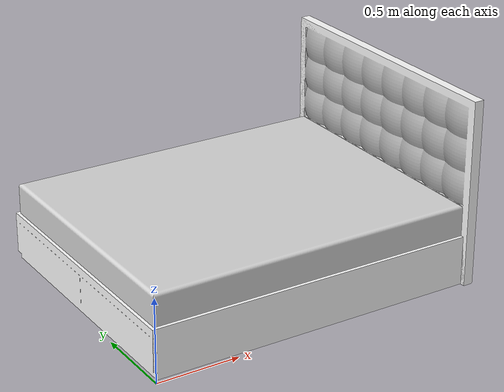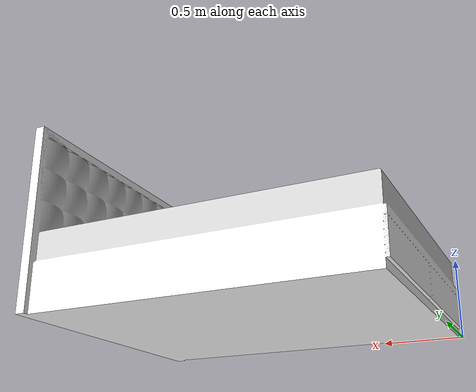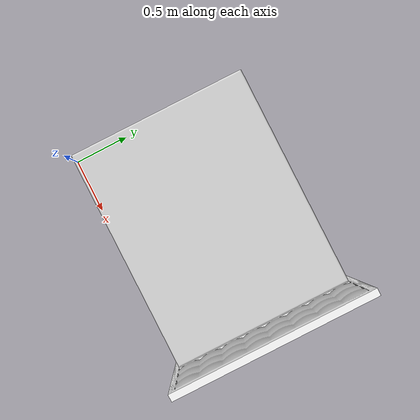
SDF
<?xml version='1.0'?>
<sdf version='1.6'>
  <model name='bed'>
    <link name='body'>
      <pose frame=''>0 0 0 0 -0 0</pose>
      <inertial>
        <mass>1</mass>
        <pose frame=''>0 0 0 0 -0 0</pose>
        <inertia>
          <ixx>1</ixx>
          <ixy>0</ixy>
          <ixz>0</ixz>
          <iyy>1</iyy>
          <iyz>0</iyz>
          <izz>1</izz>
        </inertia>
      </inertial>
      <self_collide>0</self_collide>
      <kinematic>0</kinematic>
      <gravity>1</gravity>
      <visual name='visual'>
        <geometry>
          <mesh>
            <uri>file://model/bed/bed.dae</uri>
          </mesh>
        </geometry>
        <pose frame=''>0 0 0 0 -0 0</pose>
        <cast_shadows>1</cast_shadows>
        <transparency>0</transparency>
        <material>
          <shader type='vertex'>
            <normal_map>__default__</normal_map>
          </shader>
        </material>
      </visual>
      <collision name='collision_1'>
        <laser_retro>0</laser_retro>
        <max_contacts>10</max_contacts>
        <pose frame=''>2.05 0.85 0.575 0 -0 0</pose>
        <geometry>
          <box>
            <size>0.05 1.7 1.15</size>
          </box>
        </geometry>
        <surface>
          <friction>
            <ode>
              <mu>1</mu>
              <mu2>1</mu2>
              <fdir1>0 0 0</fdir1>
              <slip1>0</slip1>
              <slip2>0</slip2>
            </ode>
            <torsional>
              <coefficient>1</coefficient>
              <patch_radius>0</patch_radius>
              <surface_radius>0</surface_radius>
              <use_patch_radius>1</use_patch_radius>
              <ode>
                <slip>0</slip>
              </ode>
            </torsional>
          </friction>
          <bounce>
            <restitution_coefficient>0</restitution_coefficient>
            <threshold>1e+06</threshold>
          </bounce>
          <contact>
            <collide_without_contact>0</collide_without_contact>
            <collide_without_contact_bitmask>1</collide_without_contact_bitmask>
            <collide_bitmask>1</collide_bitmask>
            <ode>
              <soft_cfm>0</soft_cfm>
              <soft_erp>0.2</soft_erp>
              <kp>1e+13</kp>
              <kd>1</kd>
              <max_vel>0.01</max_vel>
              <min_depth>0</min_depth>
            </ode>
            <bullet>
              <split_impulse>1</split_impulse>
              <split_impulse_penetration_threshold>-0.01</split_impulse_penetration_threshold>
              <soft_cfm>0</soft_cfm>
              <soft_erp>0.2</soft_erp>
              <kp>1e+13</kp>
              <kd>1</kd>
            </bullet>
          </contact>
        </surface>
      </collision>
      <collision name='collision_0'>
        <laser_retro>0</laser_retro>
        <max_contacts>10</max_contacts>
        <pose frame=''>1 0.85 0.25 0 -0 0</pose>
        <geometry>
          <box>
            <size>2.05 1.65 0.5</size>
          </box>
        </geometry>
        <surface>
          <friction>
            <ode>
              <mu>1</mu>
              <mu2>1</mu2>
              <fdir1>0 0 0</fdir1>
              <slip1>0</slip1>
              <slip2>0</slip2>
            </ode>
            <torsional>
              <coefficient>1</coefficient>
              <patch_radius>0</patch_radius>
              <surface_radius>0</surface_radius>
              <use_patch_radius>1</use_patch_radius>
              <ode>
                <slip>0</slip>
              </ode>
            </torsional>
          </friction>
          <bounce>
            <restitution_coefficient>0</restitution_coefficient>
            <threshold>1e+06</threshold>
          </bounce>
          <contact>
            <collide_without_contact>0</collide_without_contact>
            <collide_without_contact_bitmask>1</collide_without_contact_bitmask>
            <collide_bitmask>1</collide_bitmask>
            <ode>
              <soft_cfm>0</soft_cfm>
              <soft_erp>0.2</soft_erp>
              <kp>1e+13</kp>
              <kd>1</kd>
              <max_vel>0.01</max_vel>
              <min_depth>0</min_depth>
            </ode>
            <bullet>
              <split_impulse>1</split_impulse>
              <split_impulse_penetration_threshold>-0.01</split_impulse_penetration_threshold>
              <soft_cfm>0</soft_cfm>
              <soft_erp>0.2</soft_erp>
              <kp>1e+13</kp>
              <kd>1</kd>
            </bullet>
          </contact>
        </surface>
      </collision>
    </link>
    <static>1</static>
    <allow_auto_disable>1</allow_auto_disable>
  </model>
</sdf>
